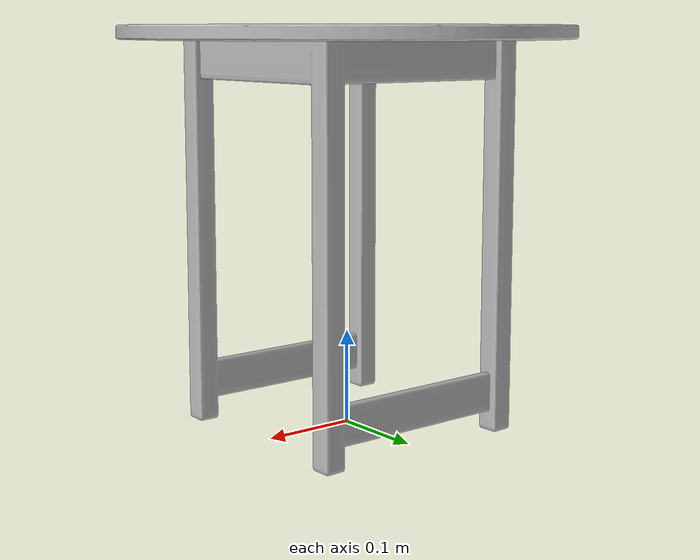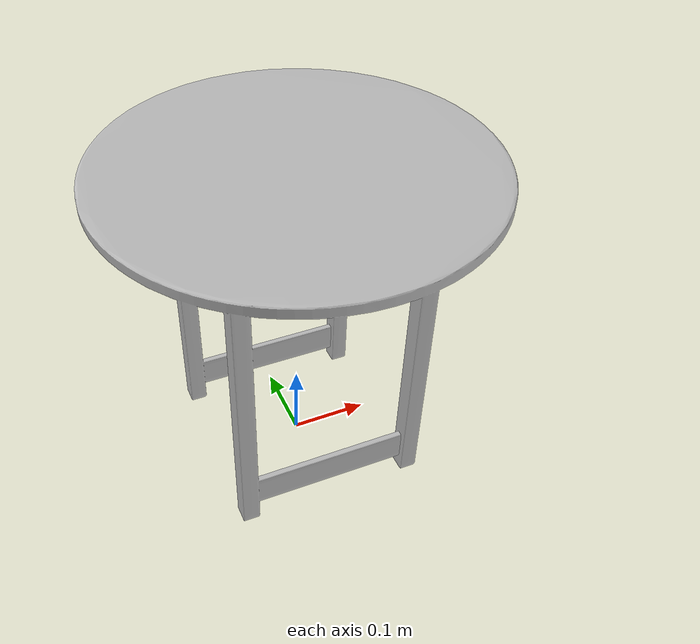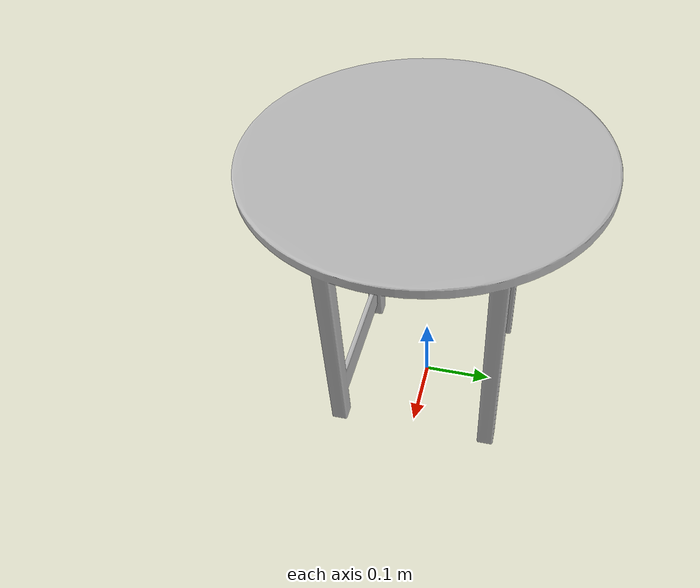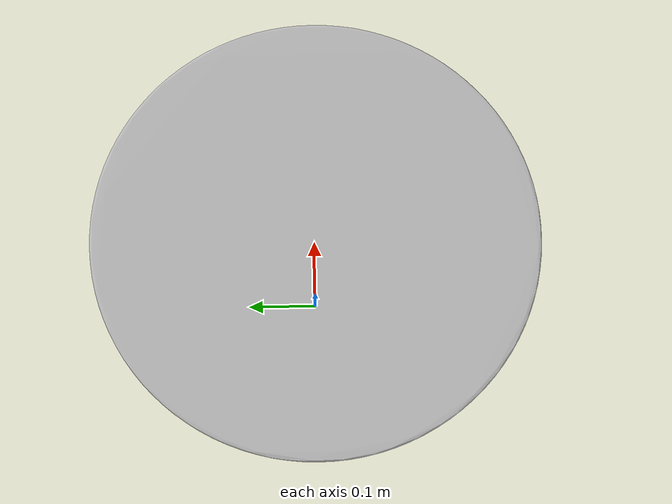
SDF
<?xml version='1.0'?>
<sdf version="1.5">

  <model name="round_table">
    <static>false</static>
    <link name="link">

      <inertial>
        <mass>20</mass>
        <inertia>
          <ixx>2.0</ixx>       <!-- for a box: ixx = 0.083 * mass * (y*y + z*z) -->
          <ixy>0.0</ixy>       <!-- for a box: ixy = 0 -->
          <ixz>0.0</ixz>       <!-- for a box: ixz = 0 -->
          <iyy>2.0</iyy>       <!-- for a box: iyy = 0.083 * mass * (x*x + z*z) -->
          <iyz>0.0</iyz>       <!-- for a box: iyz = 0 -->
          <izz>2.0</izz>      <!-- for a box: izz = 0.083 * mass * (x*x + y*y) -->
        </inertia>
      </inertial>

      <collision name="collision">
        <geometry>
          <mesh>
            <uri>model://round_table/round_table.dae</uri>
          </mesh>
        </geometry>
      </collision>

      <visual name="visual">
        <geometry>
          <mesh>
            <uri>model://round_table/round_table.dae</uri>
          </mesh>
        </geometry>
      </visual>

    </link>
  </model>

</sdf>
